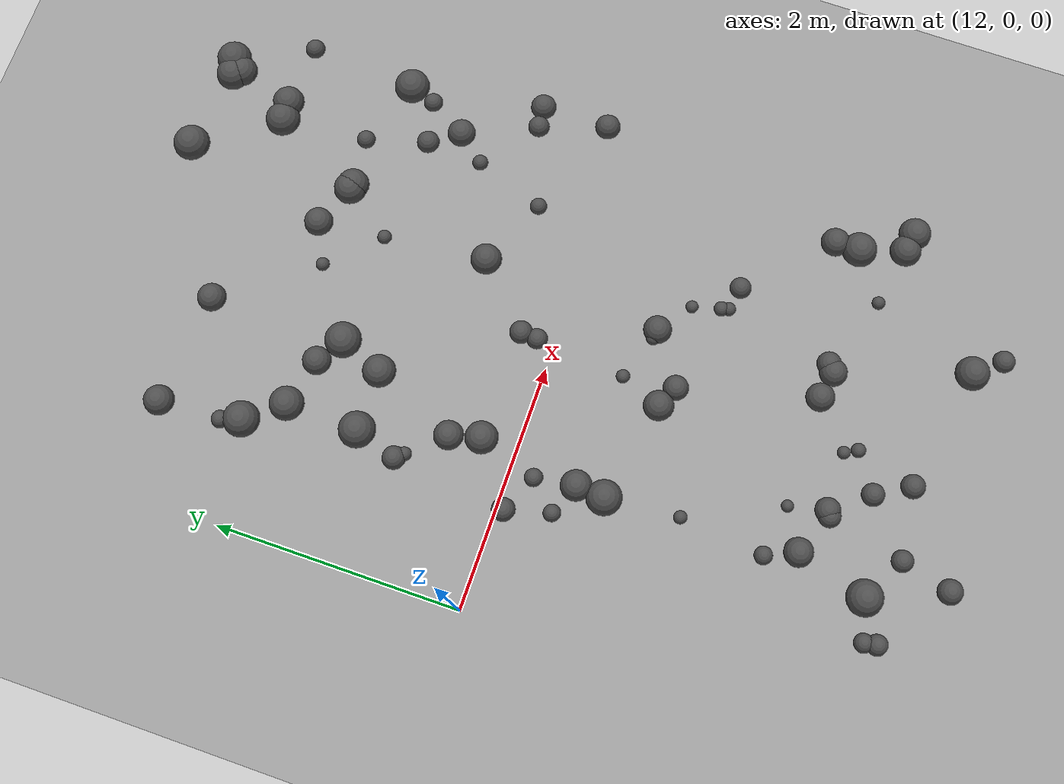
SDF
<sdf version="1.8">
 <world name="bumpy_world">
  <model name="ground_plane">
   <static>true</static>
   <link name="link">
    <collision name="collision">
     <geometry><plane><normal>0 0 1</normal><size>100 100</size></plane></geometry>
    </collision>
    <visual name="visual">
     <geometry><plane><normal>0 0 1</normal><size>100 100</size></plane></geometry>
     <material><ambient>0.6 0.6 0.6 1</ambient><diffuse>0.6 0.6 0.6 1</diffuse></material>
    </visual>
   </link>
  </model>
  <model name="bump_3">
   <static>true</static>
   <pose>16.047348548924575 -2.4647495266084416 0.0 0 0 0</pose>
   <link name="link">
    <collision name="collision">
     <geometry><sphere><radius>0.1312823752196534</radius></sphere></geometry>
    </collision>
    <visual name="visual">
     <geometry><sphere><radius>0.1312823752196534</radius></sphere></geometry>
     <material><ambient>0.3 0.3 0.3 1</ambient><diffuse>0.3 0.3 0.3 1</diffuse></material>
    </visual>
   </link>
  </model>
  <model name="bump_6">
   <static>true</static>
   <pose>13.203162525665032 -0.5260972059067628 0.0 0 0 0</pose>
   <link name="link">
    <collision name="collision">
     <geometry><sphere><radius>0.1273605895194569</radius></sphere></geometry>
    </collision>
    <visual name="visual">
     <geometry><sphere><radius>0.1273605895194569</radius></sphere></geometry>
     <material><ambient>0.3 0.3 0.3 1</ambient><diffuse>0.3 0.3 0.3 1</diffuse></material>
    </visual>
   </link>
  </model>
  <model name="bump_9">
   <static>true</static>
   <pose>13.46274391247151 -3.089868944586719 0.0 0 0 0</pose>
   <link name="link">
    <collision name="collision">
     <geometry><sphere><radius>0.0888716582538757</radius></sphere></geometry>
    </collision>
    <visual name="visual">
     <geometry><sphere><radius>0.0888716582538757</radius></sphere></geometry>
     <material><ambient>0.3 0.3 0.3 1</ambient><diffuse>0.3 0.3 0.3 1</diffuse></material>
    </visual>
   </link>
  </model>
  <model name="bump_19">
   <static>true</static>
   <pose>14.622045108859497 1.6115688562477875 0.0 0 0 0</pose>
   <link name="link">
    <collision name="collision">
     <geometry><sphere><radius>0.05853141314194617</radius></sphere></geometry>
    </collision>
    <visual name="visual">
     <geometry><sphere><radius>0.05853141314194617</radius></sphere></geometry>
     <material><ambient>0.3 0.3 0.3 1</ambient><diffuse>0.3 0.3 0.3 1</diffuse></material>
    </visual>
   </link>
  </model>
  <model name="bump_21">
   <static>true</static>
   <pose>14.965025398500424 2.016906897271027 0.0 0 0 0</pose>
   <link name="link">
    <collision name="collision">
     <geometry><sphere><radius>0.13155261055281017</radius></sphere></geometry>
    </collision>
    <visual name="visual">
     <geometry><sphere><radius>0.13155261055281017</radius></sphere></geometry>
     <material><ambient>0.3 0.3 0.3 1</ambient><diffuse>0.3 0.3 0.3 1</diffuse></material>
    </visual>
   </link>
  </model>
  <model name="bump_27">
   <static>true</static>
   <pose>12.77173663675567 -2.9778569648907656 0.0 0 0 0</pose>
   <link name="link">
    <collision name="collision">
     <geometry><sphere><radius>0.0777147321736688</radius></sphere></geometry>
    </collision>
    <visual name="visual">
     <geometry><sphere><radius>0.0777147321736688</radius></sphere></geometry>
     <material><ambient>0.3 0.3 0.3 1</ambient><diffuse>0.3 0.3 0.3 1</diffuse></material>
    </visual>
   </link>
  </model>
  <model name="bump_32">
   <static>true</static>
   <pose>12.888741431213155 2.147750231190747 0.0 0 0 0</pose>
   <link name="link">
    <collision name="collision">
     <geometry><sphere><radius>0.06974133494892694</radius></sphere></geometry>
    </collision>
    <visual name="visual">
     <geometry><sphere><radius>0.06974133494892694</radius></sphere></geometry>
     <material><ambient>0.3 0.3 0.3 1</ambient><diffuse>0.3 0.3 0.3 1</diffuse></material>
    </visual>
   </link>
  </model>
  <model name="bump_35">
   <static>true</static>
   <pose>13.253681584001981 0.5516177332786771 0.0 0 0 0</pose>
   <link name="link">
    <collision name="collision">
     <geometry><sphere><radius>0.12039289845880753</radius></sphere></geometry>
    </collision>
    <visual name="visual">
     <geometry><sphere><radius>0.12039289845880753</radius></sphere></geometry>
     <material><ambient>0.3 0.3 0.3 1</ambient><diffuse>0.3 0.3 0.3 1</diffuse></material>
    </visual>
   </link>
  </model>
  <model name="bump_36">
   <static>true</static>
   <pose>15.07110127573192 -3.212236173098113 0.0 0 0 0</pose>
   <link name="link">
    <collision name="collision">
     <geometry><sphere><radius>0.13898672384201627</radius></sphere></geometry>
    </collision>
    <visual name="visual">
     <geometry><sphere><radius>0.13898672384201627</radius></sphere></geometry>
     <material><ambient>0.3 0.3 0.3 1</ambient><diffuse>0.3 0.3 0.3 1</diffuse></material>
    </visual>
   </link>
  </model>
  <model name="bump_37">
   <static>true</static>
   <pose>12.775009322838278 2.8140652479159733 0.0 0 0 0</pose>
   <link name="link">
    <collision name="collision">
     <geometry><sphere><radius>0.12322981319350881</radius></sphere></geometry>
    </collision>
    <visual name="visual">
     <geometry><sphere><radius>0.12322981319350881</radius></sphere></geometry>
     <material><ambient>0.3 0.3 0.3 1</ambient><diffuse>0.3 0.3 0.3 1</diffuse></material>
    </visual>
   </link>
  </model>
  <model name="bump_47">
   <static>true</static>
   <pose>13.157591424054585 -2.065335876533365 0.0 0 0 0</pose>
   <link name="link">
    <collision name="collision">
     <geometry><sphere><radius>0.07445256065702863</radius></sphere></geometry>
    </collision>
    <visual name="visual">
     <geometry><sphere><radius>0.07445256065702863</radius></sphere></geometry>
     <material><ambient>0.3 0.3 0.3 1</ambient><diffuse>0.3 0.3 0.3 1</diffuse></material>
    </visual>
   </link>
  </model>
  <model name="bump_48">
   <static>true</static>
   <pose>14.571903719154566 2.16709676503301 0.0 0 0 0</pose>
   <link name="link">
    <collision name="collision">
     <geometry><sphere><radius>0.11821237628706183</radius></sphere></geometry>
    </collision>
    <visual name="visual">
     <geometry><sphere><radius>0.11821237628706183</radius></sphere></geometry>
     <material><ambient>0.3 0.3 0.3 1</ambient><diffuse>0.3 0.3 0.3 1</diffuse></material>
    </visual>
   </link>
  </model>
  <model name="bump_49">
   <static>true</static>
   <pose>14.71944921710051 -2.1649639396403884 0.0 0 0 0</pose>
   <link name="link">
    <collision name="collision">
     <geometry><sphere><radius>0.11416307263552185</radius></sphere></geometry>
    </collision>
    <visual name="visual">
     <geometry><sphere><radius>0.11416307263552185</radius></sphere></geometry>
     <material><ambient>0.3 0.3 0.3 1</ambient><diffuse>0.3 0.3 0.3 1</diffuse></material>
    </visual>
   </link>
  </model>
  <model name="bump_50">
   <static>true</static>
   <pose>14.926550468951985 2.027056780436517 0.0 0 0 0</pose>
   <link name="link">
    <collision name="collision">
     <geometry><sphere><radius>0.13505495547300034</radius></sphere></geometry>
    </collision>
    <visual name="visual">
     <geometry><sphere><radius>0.13505495547300034</radius></sphere></geometry>
     <material><ambient>0.3 0.3 0.3 1</ambient><diffuse>0.3 0.3 0.3 1</diffuse></material>
    </visual>
   </link>
  </model>
  <model name="bump_57">
   <static>true</static>
   <pose>16.11936705418786 0.7628343799603465 0.0 0 0 0</pose>
   <link name="link">
    <collision name="collision">
     <geometry><sphere><radius>0.10556045008645407</radius></sphere></geometry>
    </collision>
    <visual name="visual">
     <geometry><sphere><radius>0.10556045008645407</radius></sphere></geometry>
     <material><ambient>0.3 0.3 0.3 1</ambient><diffuse>0.3 0.3 0.3 1</diffuse></material>
    </visual>
   </link>
  </model>
  <model name="bump_61">
   <static>true</static>
   <pose>13.077744786306905 1.849026734539227 0.0 0 0 0</pose>
   <link name="link">
    <collision name="collision">
     <geometry><sphere><radius>0.1403800377382815</radius></sphere></geometry>
    </collision>
    <visual name="visual">
     <geometry><sphere><radius>0.1403800377382815</radius></sphere></geometry>
     <material><ambient>0.3 0.3 0.3 1</ambient><diffuse>0.3 0.3 0.3 1</diffuse></material>
    </visual>
   </link>
  </model>
  <model name="bump_63">
   <static>true</static>
   <pose>14.18231250398071 -2.529547998363991 0.0 0 0 0</pose>
   <link name="link">
    <collision name="collision">
     <geometry><sphere><radius>0.05902556037477772</radius></sphere></geometry>
    </collision>
    <visual name="visual">
     <geometry><sphere><radius>0.05902556037477772</radius></sphere></geometry>
     <material><ambient>0.3 0.3 0.3 1</ambient><diffuse>0.3 0.3 0.3 1</diffuse></material>
    </visual>
   </link>
  </model>
  <model name="bump_66">
   <static>true</static>
   <pose>14.87307635986048 -0.9375364905134278 0.0 0 0 0</pose>
   <link name="link">
    <collision name="collision">
     <geometry><sphere><radius>0.051546870938938665</radius></sphere></geometry>
    </collision>
    <visual name="visual">
     <geometry><sphere><radius>0.051546870938938665</radius></sphere></geometry>
     <material><ambient>0.3 0.3 0.3 1</ambient><diffuse>0.3 0.3 0.3 1</diffuse></material>
    </visual>
   </link>
  </model>
  <model name="bump_67">
   <static>true</static>
   <pose>13.001153981545839 0.8274194099034222 0.0 0 0 0</pose>
   <link name="link">
    <collision name="collision">
     <geometry><sphere><radius>0.05875180347101103</radius></sphere></geometry>
    </collision>
    <visual name="visual">
     <geometry><sphere><radius>0.05875180347101103</radius></sphere></geometry>
     <material><ambient>0.3 0.3 0.3 1</ambient><diffuse>0.3 0.3 0.3 1</diffuse></material>
    </visual>
   </link>
  </model>
  <model name="bump_71">
   <static>true</static>
   <pose>12.84168985758485 -0.05218294023085823 0.0 0 0 0</pose>
   <link name="link">
    <collision name="collision">
     <geometry><sphere><radius>0.09575622092741645</radius></sphere></geometry>
    </collision>
    <visual name="visual">
     <geometry><sphere><radius>0.09575622092741645</radius></sphere></geometry>
     <material><ambient>0.3 0.3 0.3 1</ambient><diffuse>0.3 0.3 0.3 1</diffuse></material>
    </visual>
   </link>
  </model>
  <model name="bump_76">
   <static>true</static>
   <pose>12.791041421157644 -3.0798658523143274 0.0 0 0 0</pose>
   <link name="link">
    <collision name="collision">
     <geometry><sphere><radius>0.0850777389592967</radius></sphere></geometry>
    </collision>
    <visual name="visual">
     <geometry><sphere><radius>0.0850777389592967</radius></sphere></geometry>
     <material><ambient>0.3 0.3 0.3 1</ambient><diffuse>0.3 0.3 0.3 1</diffuse></material>
    </visual>
   </link>
  </model>
  <model name="bump_82">
   <static>true</static>
   <pose>14.217627064056918 0.15215715944270158 0.0 0 0 0</pose>
   <link name="link">
    <collision name="collision">
     <geometry><sphere><radius>0.08499574275729208</radius></sphere></geometry>
    </collision>
    <visual name="visual">
     <geometry><sphere><radius>0.08499574275729208</radius></sphere></geometry>
     <material><ambient>0.3 0.3 0.3 1</ambient><diffuse>0.3 0.3 0.3 1</diffuse></material>
    </visual>
   </link>
  </model>
  <model name="bump_83">
   <static>true</static>
   <pose>15.48315533770354 1.0952772332607488 0.0 0 0 0</pose>
   <link name="link">
    <collision name="collision">
     <geometry><sphere><radius>0.06484741985039635</radius></sphere></geometry>
    </collision>
    <visual name="visual">
     <geometry><sphere><radius>0.06484741985039635</radius></sphere></geometry>
     <material><ambient>0.3 0.3 0.3 1</ambient><diffuse>0.3 0.3 0.3 1</diffuse></material>
    </visual>
   </link>
  </model>
  <model name="bump_85">
   <static>true</static>
   <pose>14.243576926300605 2.002929514089841 0.0 0 0 0</pose>
   <link name="link">
    <collision name="collision">
     <geometry><sphere><radius>0.05576142466802508</radius></sphere></geometry>
    </collision>
    <visual name="visual">
     <geometry><sphere><radius>0.05576142466802508</radius></sphere></geometry>
     <material><ambient>0.3 0.3 0.3 1</ambient><diffuse>0.3 0.3 0.3 1</diffuse></material>
    </visual>
   </link>
  </model>
  <model name="bump_90">
   <static>true</static>
   <pose>13.612311818848625 -2.461958967080199 0.0 0 0 0</pose>
   <link name="link">
    <collision name="collision">
     <geometry><sphere><radius>0.09233882621058961</radius></sphere></geometry>
    </collision>
    <visual name="visual">
     <geometry><sphere><radius>0.09233882621058961</radius></sphere></geometry>
     <material><ambient>0.3 0.3 0.3 1</ambient><diffuse>0.3 0.3 0.3 1</diffuse></material>
    </visual>
   </link>
  </model>
  <model name="bump_91">
   <static>true</static>
   <pose>13.268905371906861 -2.3153303758690162 0.0 0 0 0</pose>
   <link name="link">
    <collision name="collision">
     <geometry><sphere><radius>0.11872014321630436</radius></sphere></geometry>
    </collision>
    <visual name="visual">
     <geometry><sphere><radius>0.11872014321630436</radius></sphere></geometry>
     <material><ambient>0.3 0.3 0.3 1</ambient><diffuse>0.3 0.3 0.3 1</diffuse></material>
    </visual>
   </link>
  </model>
  <model name="bump_92">
   <static>true</static>
   <pose>14.713548656431364 0.7647789625414152 0.0 0 0 0</pose>
   <link name="link">
    <collision name="collision">
     <geometry><sphere><radius>0.12755117541166835</radius></sphere></geometry>
    </collision>
    <visual name="visual">
     <geometry><sphere><radius>0.12755117541166835</radius></sphere></geometry>
     <material><ambient>0.3 0.3 0.3 1</ambient><diffuse>0.3 0.3 0.3 1</diffuse></material>
    </visual>
   </link>
  </model>
  <model name="bump_105">
   <static>true</static>
   <pose>13.693155858475201 2.743779183230428 0.0 0 0 0</pose>
   <link name="link">
    <collision name="collision">
     <geometry><sphere><radius>0.11640735099929735</radius></sphere></geometry>
    </collision>
    <visual name="visual">
     <geometry><sphere><radius>0.11640735099929735</radius></sphere></geometry>
     <material><ambient>0.3 0.3 0.3 1</ambient><diffuse>0.3 0.3 0.3 1</diffuse></material>
    </visual>
   </link>
  </model>
  <model name="bump_120">
   <static>true</static>
   <pose>15.991955028472741 2.7557279212271064 0.0 0 0 0</pose>
   <link name="link">
    <collision name="collision">
     <geometry><sphere><radius>0.08051355308698317</radius></sphere></geometry>
    </collision>
    <visual name="visual">
     <geometry><sphere><radius>0.08051355308698317</radius></sphere></geometry>
     <material><ambient>0.3 0.3 0.3 1</ambient><diffuse>0.3 0.3 0.3 1</diffuse></material>
    </visual>
   </link>
  </model>
  <model name="bump_132">
   <static>true</static>
   <pose>14.195323237353211 -1.0200455720921808 0.0 0 0 0</pose>
   <link name="link">
    <collision name="collision">
     <geometry><sphere><radius>0.10373859188097384</radius></sphere></geometry>
    </collision>
    <visual name="visual">
     <geometry><sphere><radius>0.10373859188097384</radius></sphere></geometry>
     <material><ambient>0.3 0.3 0.3 1</ambient><diffuse>0.3 0.3 0.3 1</diffuse></material>
    </visual>
   </link>
  </model>
  <model name="bump_136">
   <static>true</static>
   <pose>13.583243325236726 -2.13016314817387 0.0 0 0 0</pose>
   <link name="link">
    <collision name="collision">
     <geometry><sphere><radius>0.050222286085056335</radius></sphere></geometry>
    </collision>
    <visual name="visual">
     <geometry><sphere><radius>0.050222286085056335</radius></sphere></geometry>
     <material><ambient>0.3 0.3 0.3 1</ambient><diffuse>0.3 0.3 0.3 1</diffuse></material>
    </visual>
   </link>
  </model>
  <model name="bump_139">
   <static>true</static>
   <pose>14.778814655270423 -2.113154823873324 0.0 0 0 0</pose>
   <link name="link">
    <collision name="collision">
     <geometry><sphere><radius>0.09901912805711109</radius></sphere></geometry>
    </collision>
    <visual name="visual">
     <geometry><sphere><radius>0.09901912805711109</radius></sphere></geometry>
     <material><ambient>0.3 0.3 0.3 1</ambient><diffuse>0.3 0.3 0.3 1</diffuse></material>
    </visual>
   </link>
  </model>
  <model name="bump_141">
   <static>true</static>
   <pose>13.705035665888794 1.6158784381438238 0.0 0 0 0</pose>
   <link name="link">
    <collision name="collision">
     <geometry><sphere><radius>0.14902591294060052</radius></sphere></geometry>
    </collision>
    <visual name="visual">
     <geometry><sphere><radius>0.14902591294060052</radius></sphere></geometry>
     <material><ambient>0.3 0.3 0.3 1</ambient><diffuse>0.3 0.3 0.3 1</diffuse></material>
    </visual>
   </link>
  </model>
  <model name="bump_142">
   <static>true</static>
   <pose>12.938285298722631 -0.4183926165299847 0.0 0 0 0</pose>
   <link name="link">
    <collision name="collision">
     <geometry><sphere><radius>0.07139554157162195</radius></sphere></geometry>
    </collision>
    <visual name="visual">
     <geometry><sphere><radius>0.07139554157162195</radius></sphere></geometry>
     <material><ambient>0.3 0.3 0.3 1</ambient><diffuse>0.3 0.3 0.3 1</diffuse></material>
    </visual>
   </link>
  </model>
  <model name="bump_143">
   <static>true</static>
   <pose>13.154164893391767 -0.19213129663034545 0.0 0 0 0</pose>
   <link name="link">
    <collision name="collision">
     <geometry><sphere><radius>0.07514409593129599</radius></sphere></geometry>
    </collision>
    <visual name="visual">
     <geometry><sphere><radius>0.07514409593129599</radius></sphere></geometry>
     <material><ambient>0.3 0.3 0.3 1</ambient><diffuse>0.3 0.3 0.3 1</diffuse></material>
    </visual>
   </link>
  </model>
  <model name="bump_149">
   <static>true</static>
   <pose>15.690751926070208 3.3679418588207195 0.0 0 0 0</pose>
   <link name="link">
    <collision name="collision">
     <geometry><sphere><radius>0.14300392585540422</radius></sphere></geometry>
    </collision>
    <visual name="visual">
     <geometry><sphere><radius>0.14300392585540422</radius></sphere></geometry>
     <material><ambient>0.3 0.3 0.3 1</ambient><diffuse>0.3 0.3 0.3 1</diffuse></material>
    </visual>
   </link>
  </model>
  <model name="bump_151">
   <static>true</static>
   <pose>13.18339974091066 -0.7618873939611337 0.0 0 0 0</pose>
   <link name="link">
    <collision name="collision">
     <geometry><sphere><radius>0.1452085593702997</radius></sphere></geometry>
    </collision>
    <visual name="visual">
     <geometry><sphere><radius>0.1452085593702997</radius></sphere></geometry>
     <material><ambient>0.3 0.3 0.3 1</ambient><diffuse>0.3 0.3 0.3 1</diffuse></material>
    </visual>
   </link>
  </model>
  <model name="bump_161">
   <static>true</static>
   <pose>14.949846037791753 -1.2242212811853177 0.0 0 0 0</pose>
   <link name="link">
    <collision name="collision">
     <geometry><sphere><radius>0.05553113502408084</radius></sphere></geometry>
    </collision>
    <visual name="visual">
     <geometry><sphere><radius>0.05553113502408084</radius></sphere></geometry>
     <material><ambient>0.3 0.3 0.3 1</ambient><diffuse>0.3 0.3 0.3 1</diffuse></material>
    </visual>
   </link>
  </model>
  <model name="bump_162">
   <static>true</static>
   <pose>14.148530132591993 -0.594388358292524 0.0 0 0 0</pose>
   <link name="link">
    <collision name="collision">
     <geometry><sphere><radius>0.0564762296822304</radius></sphere></geometry>
    </collision>
    <visual name="visual">
     <geometry><sphere><radius>0.0564762296822304</radius></sphere></geometry>
     <material><ambient>0.3 0.3 0.3 1</ambient><diffuse>0.3 0.3 0.3 1</diffuse></material>
    </visual>
   </link>
  </model>
  <model name="bump_167">
   <static>true</static>
   <pose>15.513960390484554 1.5645330466628042 0.0 0 0 0</pose>
   <link name="link">
    <collision name="collision">
     <geometry><sphere><radius>0.09313947728975683</radius></sphere></geometry>
    </collision>
    <visual name="visual">
     <geometry><sphere><radius>0.09313947728975683</radius></sphere></geometry>
     <material><ambient>0.3 0.3 0.3 1</ambient><diffuse>0.3 0.3 0.3 1</diffuse></material>
    </visual>
   </link>
  </model>
  <model name="bump_168">
   <static>true</static>
   <pose>12.845249171766048 2.140126070828564 0.0 0 0 0</pose>
   <link name="link">
    <collision name="collision">
     <geometry><sphere><radius>0.1477695331221125</radius></sphere></geometry>
    </collision>
    <visual name="visual">
     <geometry><sphere><radius>0.1477695331221125</radius></sphere></geometry>
     <material><ambient>0.3 0.3 0.3 1</ambient><diffuse>0.3 0.3 0.3 1</diffuse></material>
    </visual>
   </link>
  </model>
  <model name="bump_178">
   <static>true</static>
   <pose>15.941560795910029 0.742070129296259 0.0 0 0 0</pose>
   <link name="link">
    <collision name="collision">
     <geometry><sphere><radius>0.08881776524493155</radius></sphere></geometry>
    </collision>
    <visual name="visual">
     <geometry><sphere><radius>0.08881776524493155</radius></sphere></geometry>
     <material><ambient>0.3 0.3 0.3 1</ambient><diffuse>0.3 0.3 0.3 1</diffuse></material>
    </visual>
   </link>
  </model>
  <model name="bump_191">
   <static>true</static>
   <pose>13.883320012242516 -2.733791906284856 0.0 0 0 0</pose>
   <link name="link">
    <collision name="collision">
     <geometry><sphere><radius>0.09336394988268258</radius></sphere></geometry>
    </collision>
    <visual name="visual">
     <geometry><sphere><radius>0.09336394988268258</radius></sphere></geometry>
     <material><ambient>0.3 0.3 0.3 1</ambient><diffuse>0.3 0.3 0.3 1</diffuse></material>
    </visual>
   </link>
  </model>
  <model name="bump_196">
   <static>true</static>
   <pose>15.85948671522878 1.646888962398192 0.0 0 0 0</pose>
   <link name="link">
    <collision name="collision">
     <geometry><sphere><radius>0.07873445380265354</radius></sphere></geometry>
    </collision>
    <visual name="visual">
     <geometry><sphere><radius>0.07873445380265354</radius></sphere></geometry>
     <material><ambient>0.3 0.3 0.3 1</ambient><diffuse>0.3 0.3 0.3 1</diffuse></material>
    </visual>
   </link>
  </model>
  <model name="bump_201">
   <static>true</static>
   <pose>15.472849579460556 2.7915511846583305 0.0 0 0 0</pose>
   <link name="link">
    <collision name="collision">
     <geometry><sphere><radius>0.13050842471771856</radius></sphere></geometry>
    </collision>
    <visual name="visual">
     <geometry><sphere><radius>0.13050842471771856</radius></sphere></geometry>
     <material><ambient>0.3 0.3 0.3 1</ambient><diffuse>0.3 0.3 0.3 1</diffuse></material>
    </visual>
   </link>
  </model>
  <model name="bump_211">
   <static>true</static>
   <pose>13.320508010799822 0.30030443530694395 0.0 0 0 0</pose>
   <link name="link">
    <collision name="collision">
     <geometry><sphere><radius>0.13406391910261073</radius></sphere></geometry>
    </collision>
    <visual name="visual">
     <geometry><sphere><radius>0.13406391910261073</radius></sphere></geometry>
     <material><ambient>0.3 0.3 0.3 1</ambient><diffuse>0.3 0.3 0.3 1</diffuse></material>
    </visual>
   </link>
  </model>
  <model name="bump_214">
   <static>true</static>
   <pose>14.87225606412403 3.413600724580557 0.0 0 0 0</pose>
   <link name="link">
    <collision name="collision">
     <geometry><sphere><radius>0.1492782700553998</radius></sphere></geometry>
    </collision>
    <visual name="visual">
     <geometry><sphere><radius>0.1492782700553998</radius></sphere></geometry>
     <material><ambient>0.3 0.3 0.3 1</ambient><diffuse>0.3 0.3 0.3 1</diffuse></material>
    </visual>
   </link>
  </model>
  <model name="bump_215">
   <static>true</static>
   <pose>14.046073624765903 -3.011686160740045 0.0 0 0 0</pose>
   <link name="link">
    <collision name="collision">
     <geometry><sphere><radius>0.0983595668152165</radius></sphere></geometry>
    </collision>
    <visual name="visual">
     <geometry><sphere><radius>0.0983595668152165</radius></sphere></geometry>
     <material><ambient>0.3 0.3 0.3 1</ambient><diffuse>0.3 0.3 0.3 1</diffuse></material>
    </visual>
   </link>
  </model>
  <model name="bump_216">
   <static>true</static>
   <pose>14.22847658005847 0.29200728473053905 0.0 0 0 0</pose>
   <link name="link">
    <collision name="collision">
     <geometry><sphere><radius>0.09448797484396096</radius></sphere></geometry>
    </collision>
    <visual name="visual">
     <geometry><sphere><radius>0.09448797484396096</radius></sphere></geometry>
     <material><ambient>0.3 0.3 0.3 1</ambient><diffuse>0.3 0.3 0.3 1</diffuse></material>
    </visual>
   </link>
  </model>
  <model name="bump_230">
   <static>true</static>
   <pose>14.128214416509028 -2.4260935079633184 0.0 0 0 0</pose>
   <link name="link">
    <collision name="collision">
     <geometry><sphere><radius>0.05285593787474631</radius></sphere></geometry>
    </collision>
    <visual name="visual">
     <geometry><sphere><radius>0.05285593787474631</radius></sphere></geometry>
     <material><ambient>0.3 0.3 0.3 1</ambient><diffuse>0.3 0.3 0.3 1</diffuse></material>
    </visual>
   </link>
  </model>
  <model name="bump_231">
   <static>true</static>
   <pose>13.479567387813281 1.752259940793917 0.0 0 0 0</pose>
   <link name="link">
    <collision name="collision">
     <geometry><sphere><radius>0.11720304676202245</radius></sphere></geometry>
    </collision>
    <visual name="visual">
     <geometry><sphere><radius>0.11720304676202245</radius></sphere></geometry>
     <material><ambient>0.3 0.3 0.3 1</ambient><diffuse>0.3 0.3 0.3 1</diffuse></material>
    </visual>
   </link>
  </model>
  <model name="bump_235">
   <static>true</static>
   <pose>14.933326379173762 -1.1661190497794705 0.0 0 0 0</pose>
   <link name="link">
    <collision name="collision">
     <geometry><sphere><radius>0.06117205057516287</radius></sphere></geometry>
    </collision>
    <visual name="visual">
     <geometry><sphere><radius>0.06117205057516287</radius></sphere></geometry>
     <material><ambient>0.3 0.3 0.3 1</ambient><diffuse>0.3 0.3 0.3 1</diffuse></material>
    </visual>
   </link>
  </model>
  <model name="bump_237">
   <static>true</static>
   <pose>13.560709700500022 1.252743655600237 0.0 0 0 0</pose>
   <link name="link">
    <collision name="collision">
     <geometry><sphere><radius>0.13530007786828196</radius></sphere></geometry>
    </collision>
    <visual name="visual">
     <geometry><sphere><radius>0.13530007786828196</radius></sphere></geometry>
     <material><ambient>0.3 0.3 0.3 1</ambient><diffuse>0.3 0.3 0.3 1</diffuse></material>
    </visual>
   </link>
  </model>
  <model name="bump_238">
   <static>true</static>
   <pose>14.014858839102144 -0.9361316507587483 0.0 0 0 0</pose>
   <link name="link">
    <collision name="collision">
     <geometry><sphere><radius>0.12459840088911651</radius></sphere></geometry>
    </collision>
    <visual name="visual">
     <geometry><sphere><radius>0.12459840088911651</radius></sphere></geometry>
     <material><ambient>0.3 0.3 0.3 1</ambient><diffuse>0.3 0.3 0.3 1</diffuse></material>
    </visual>
   </link>
  </model>
  <model name="bump_241">
   <static>true</static>
   <pose>16.123958790411933 0.20017926105125117 0.0 0 0 0</pose>
   <link name="link">
    <collision name="collision">
     <geometry><sphere><radius>0.10408458053951386</radius></sphere></geometry>
    </collision>
    <visual name="visual">
     <geometry><sphere><radius>0.10408458053951386</radius></sphere></geometry>
     <material><ambient>0.3 0.3 0.3 1</ambient><diffuse>0.3 0.3 0.3 1</diffuse></material>
    </visual>
   </link>
  </model>
  <model name="bump_252">
   <static>true</static>
   <pose>15.914641961185088 1.8164684648004616 0.0 0 0 0</pose>
   <link name="link">
    <collision name="collision">
     <geometry><sphere><radius>0.058115177017579844</radius></sphere></geometry>
    </collision>
    <visual name="visual">
     <geometry><sphere><radius>0.058115177017579844</radius></sphere></geometry>
     <material><ambient>0.3 0.3 0.3 1</ambient><diffuse>0.3 0.3 0.3 1</diffuse></material>
    </visual>
   </link>
  </model>
  <model name="bump_265">
   <static>true</static>
   <pose>13.229796608846312 -1.3713662021871214 0.0 0 0 0</pose>
   <link name="link">
    <collision name="collision">
     <geometry><sphere><radius>0.05468128320112631</radius></sphere></geometry>
    </collision>
    <visual name="visual">
     <geometry><sphere><radius>0.05468128320112631</radius></sphere></geometry>
     <material><ambient>0.3 0.3 0.3 1</ambient><diffuse>0.3 0.3 0.3 1</diffuse></material>
    </visual>
   </link>
  </model>
  <model name="bump_272">
   <static>true</static>
   <pose>15.149607054433849 -1.2588018112610917 0.0 0 0 0</pose>
   <link name="link">
    <collision name="collision">
     <geometry><sphere><radius>0.08770390362923514</radius></sphere></geometry>
    </collision>
    <visual name="visual">
     <geometry><sphere><radius>0.08770390362923514</radius></sphere></geometry>
     <material><ambient>0.3 0.3 0.3 1</ambient><diffuse>0.3 0.3 0.3 1</diffuse></material>
    </visual>
   </link>
  </model>
  <model name="bump_276">
   <static>true</static>
   <pose>15.771939229852359 -2.074459440029422 0.0 0 0 0</pose>
   <link name="link">
    <collision name="collision">
     <geometry><sphere><radius>0.14369603423611071</radius></sphere></geometry>
    </collision>
    <visual name="visual">
     <geometry><sphere><radius>0.14369603423611071</radius></sphere></geometry>
     <material><ambient>0.3 0.3 0.3 1</ambient><diffuse>0.3 0.3 0.3 1</diffuse></material>
    </visual>
   </link>
  </model>
  <model name="bump_279">
   <static>true</static>
   <pose>13.100500756702775 -2.8932389783455696 0.0 0 0 0</pose>
   <link name="link">
    <collision name="collision">
     <geometry><sphere><radius>0.14776173414359428</radius></sphere></geometry>
    </collision>
    <visual name="visual">
     <geometry><sphere><radius>0.14776173414359428</radius></sphere></geometry>
     <material><ambient>0.3 0.3 0.3 1</ambient><diffuse>0.3 0.3 0.3 1</diffuse></material>
    </visual>
   </link>
  </model>
  <model name="bump_282">
   <static>true</static>
   <pose>15.313223741196405 2.7776197345258744 0.0 0 0 0</pose>
   <link name="link">
    <collision name="collision">
     <geometry><sphere><radius>0.14331533961397672</radius></sphere></geometry>
    </collision>
    <visual name="visual">
     <geometry><sphere><radius>0.14331533961397672</radius></sphere></geometry>
     <material><ambient>0.3 0.3 0.3 1</ambient><diffuse>0.3 0.3 0.3 1</diffuse></material>
    </visual>
   </link>
  </model>
  <model name="bump_283">
   <static>true</static>
   <pose>15.558874075834693 3.322088033454399 0.0 0 0 0</pose>
   <link name="link">
    <collision name="collision">
     <geometry><sphere><radius>0.13966179478864554</radius></sphere></geometry>
    </collision>
    <visual name="visual">
     <geometry><sphere><radius>0.13966179478864554</radius></sphere></geometry>
     <material><ambient>0.3 0.3 0.3 1</ambient><diffuse>0.3 0.3 0.3 1</diffuse></material>
    </visual>
   </link>
  </model>
  <model name="bump_291">
   <static>true</static>
   <pose>15.667728333471754 1.3879907437570775 0.0 0 0 0</pose>
   <link name="link">
    <collision name="collision">
     <geometry><sphere><radius>0.05475980024352439</radius></sphere></geometry>
    </collision>
    <visual name="visual">
     <geometry><sphere><radius>0.05475980024352439</radius></sphere></geometry>
     <material><ambient>0.3 0.3 0.3 1</ambient><diffuse>0.3 0.3 0.3 1</diffuse></material>
    </visual>
   </link>
  </model>
  <model name="bump_292">
   <static>true</static>
   <pose>15.244125123189104 -3.4245135494512455 0.0 0 0 0</pose>
   <link name="link">
    <collision name="collision">
     <geometry><sphere><radius>0.08973257287278558</radius></sphere></geometry>
    </collision>
    <visual name="visual">
     <geometry><sphere><radius>0.08973257287278558</radius></sphere></geometry>
     <material><ambient>0.3 0.3 0.3 1</ambient><diffuse>0.3 0.3 0.3 1</diffuse></material>
    </visual>
   </link>
  </model>
  <model name="bump_294">
   <static>true</static>
   <pose>13.061532506296318 1.2482878331349587 0.0 0 0 0</pose>
   <link name="link">
    <collision name="collision">
     <geometry><sphere><radius>0.14996165779953521</radius></sphere></geometry>
    </collision>
    <visual name="visual">
     <geometry><sphere><radius>0.14996165779953521</radius></sphere></geometry>
     <material><ambient>0.3 0.3 0.3 1</ambient><diffuse>0.3 0.3 0.3 1</diffuse></material>
    </visual>
   </link>
  </model>
  <model name="bump_297">
   <static>true</static>
   <pose>15.88191632531774 -2.4325020642472857 0.0 0 0 0</pose>
   <link name="link">
    <collision name="collision">
     <geometry><sphere><radius>0.127663163397576</radius></sphere></geometry>
    </collision>
    <visual name="visual">
     <geometry><sphere><radius>0.127663163397576</radius></sphere></geometry>
     <material><ambient>0.3 0.3 0.3 1</ambient><diffuse>0.3 0.3 0.3 1</diffuse></material>
    </visual>
   </link>
  </model>
  <model name="bump_303">
   <static>true</static>
   <pose>15.278889892475101 0.5140793342614298 0.0 0 0 0</pose>
   <link name="link">
    <collision name="collision">
     <geometry><sphere><radius>0.07011301911172742</radius></sphere></geometry>
    </collision>
    <visual name="visual">
     <geometry><sphere><radius>0.07011301911172742</radius></sphere></geometry>
     <material><ambient>0.3 0.3 0.3 1</ambient><diffuse>0.3 0.3 0.3 1</diffuse></material>
    </visual>
   </link>
  </model>
  <model name="bump_327">
   <static>true</static>
   <pose>15.770415029234961 -1.8731442204492812 0.0 0 0 0</pose>
   <link name="link">
    <collision name="collision">
     <geometry><sphere><radius>0.11784914176193725</radius></sphere></geometry>
    </collision>
    <visual name="visual">
     <geometry><sphere><radius>0.11784914176193725</radius></sphere></geometry>
     <material><ambient>0.3 0.3 0.3 1</ambient><diffuse>0.3 0.3 0.3 1</diffuse></material>
    </visual>
   </link>
  </model>
  <model name="bump_329">
   <static>true</static>
   <pose>13.65295146302048 -2.43577266731214 0.0 0 0 0</pose>
   <link name="link">
    <collision name="collision">
     <geometry><sphere><radius>0.10302098244692134</radius></sphere></geometry>
    </collision>
    <visual name="visual">
     <geometry><sphere><radius>0.10302098244692134</radius></sphere></geometry>
     <material><ambient>0.3 0.3 0.3 1</ambient><diffuse>0.3 0.3 0.3 1</diffuse></material>
    </visual>
   </link>
  </model>
  <model name="bump_335">
   <static>true</static>
   <pose>15.602004694888775 3.2642430171446115 0.0 0 0 0</pose>
   <link name="link">
    <collision name="collision">
     <geometry><sphere><radius>0.12959587378257148</radius></sphere></geometry>
    </collision>
    <visual name="visual">
     <geometry><sphere><radius>0.12959587378257148</radius></sphere></geometry>
     <material><ambient>0.3 0.3 0.3 1</ambient><diffuse>0.3 0.3 0.3 1</diffuse></material>
    </visual>
   </link>
  </model>
  <model name="bump_342">
   <static>true</static>
   <pose>14.52769894860918 -0.724187978908581 0.0 0 0 0</pose>
   <link name="link">
    <collision name="collision">
     <geometry><sphere><radius>0.06059407628823896</radius></sphere></geometry>
    </collision>
    <visual name="visual">
     <geometry><sphere><radius>0.06059407628823896</radius></sphere></geometry>
     <material><ambient>0.3 0.3 0.3 1</ambient><diffuse>0.3 0.3 0.3 1</diffuse></material>
    </visual>
   </link>
  </model>
  <model name="bump_351">
   <static>true</static>
   <pose>15.678782170910429 1.330238804504873 0.0 0 0 0</pose>
   <link name="link">
    <collision name="collision">
     <geometry><sphere><radius>0.11581537313846513</radius></sphere></geometry>
    </collision>
    <visual name="visual">
     <geometry><sphere><radius>0.11581537313846513</radius></sphere></geometry>
     <material><ambient>0.3 0.3 0.3 1</ambient><diffuse>0.3 0.3 0.3 1</diffuse></material>
    </visual>
   </link>
  </model>
  <model name="bump_359">
   <static>true</static>
   <pose>15.36876027085191 2.0582204921068614 0.0 0 0 0</pose>
   <link name="link">
    <collision name="collision">
     <geometry><sphere><radius>0.07573455069736781</radius></sphere></geometry>
    </collision>
    <visual name="visual">
     <geometry><sphere><radius>0.07573455069736781</radius></sphere></geometry>
     <material><ambient>0.3 0.3 0.3 1</ambient><diffuse>0.3 0.3 0.3 1</diffuse></material>
    </visual>
   </link>
  </model>
  <model name="bump_360">
   <static>true</static>
   <pose>13.354797511137331 -3.4985215348668848 0.0 0 0 0</pose>
   <link name="link">
    <collision name="collision">
     <geometry><sphere><radius>0.10241495434720244</radius></sphere></geometry>
    </collision>
    <visual name="visual">
     <geometry><sphere><radius>0.10241495434720244</radius></sphere></geometry>
     <material><ambient>0.3 0.3 0.3 1</ambient><diffuse>0.3 0.3 0.3 1</diffuse></material>
    </visual>
   </link>
  </model>
  <model name="bump_365">
   <static>true</static>
   <pose>15.389571342092356 -2.3467519916211534 0.0 0 0 0</pose>
   <link name="link">
    <collision name="collision">
     <geometry><sphere><radius>0.05391572543051305</radius></sphere></geometry>
    </collision>
    <visual name="visual">
     <geometry><sphere><radius>0.05391572543051305</radius></sphere></geometry>
     <material><ambient>0.3 0.3 0.3 1</ambient><diffuse>0.3 0.3 0.3 1</diffuse></material>
    </visual>
   </link>
  </model>
  <model name="bump_367">
   <static>true</static>
   <pose>14.60241785476398 -0.734237424687747 0.0 0 0 0</pose>
   <link name="link">
    <collision name="collision">
     <geometry><sphere><radius>0.11511287269423208</radius></sphere></geometry>
    </collision>
    <visual name="visual">
     <geometry><sphere><radius>0.11511287269423208</radius></sphere></geometry>
     <material><ambient>0.3 0.3 0.3 1</ambient><diffuse>0.3 0.3 0.3 1</diffuse></material>
    </visual>
   </link>
  </model>
  <model name="bump_373">
   <static>true</static>
   <pose>12.790326244034235 2.297550914209639 0.0 0 0 0</pose>
   <link name="link">
    <collision name="collision">
     <geometry><sphere><radius>0.07300313155244682</radius></sphere></geometry>
    </collision>
    <visual name="visual">
     <geometry><sphere><radius>0.07300313155244682</radius></sphere></geometry>
     <material><ambient>0.3 0.3 0.3 1</ambient><diffuse>0.3 0.3 0.3 1</diffuse></material>
    </visual>
   </link>
  </model>
  <model name="bump_379">
   <static>true</static>
   <pose>14.493505735480177 -2.124440925815254 0.0 0 0 0</pose>
   <link name="link">
    <collision name="collision">
     <geometry><sphere><radius>0.11727739254095917</radius></sphere></geometry>
    </collision>
    <visual name="visual">
     <geometry><sphere><radius>0.11727739254095917</radius></sphere></geometry>
     <material><ambient>0.3 0.3 0.3 1</ambient><diffuse>0.3 0.3 0.3 1</diffuse></material>
    </visual>
   </link>
  </model>
  <model name="bump_381">
   <static>true</static>
   <pose>12.946757623897984 0.8942047297337794 0.0 0 0 0</pose>
   <link name="link">
    <collision name="collision">
     <geometry><sphere><radius>0.09568358684764561</radius></sphere></geometry>
    </collision>
    <visual name="visual">
     <geometry><sphere><radius>0.09568358684764561</radius></sphere></geometry>
     <material><ambient>0.3 0.3 0.3 1</ambient><diffuse>0.3 0.3 0.3 1</diffuse></material>
    </visual>
   </link>
  </model>
  <model name="bump_386">
   <static>true</static>
   <pose>15.937795225529905 1.8640028751345001 0.0 0 0 0</pose>
   <link name="link">
    <collision name="collision">
     <geometry><sphere><radius>0.14578919191867618</radius></sphere></geometry>
    </collision>
    <visual name="visual">
     <geometry><sphere><radius>0.14578919191867618</radius></sphere></geometry>
     <material><ambient>0.3 0.3 0.3 1</ambient><diffuse>0.3 0.3 0.3 1</diffuse></material>
    </visual>
   </link>
  </model>
 </world>
</sdf>
